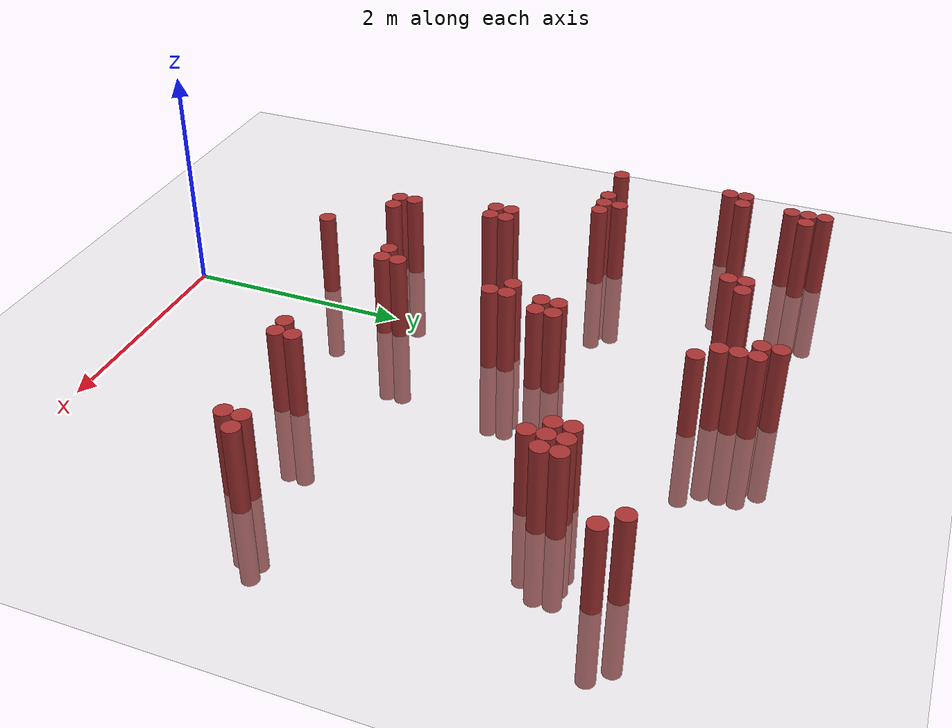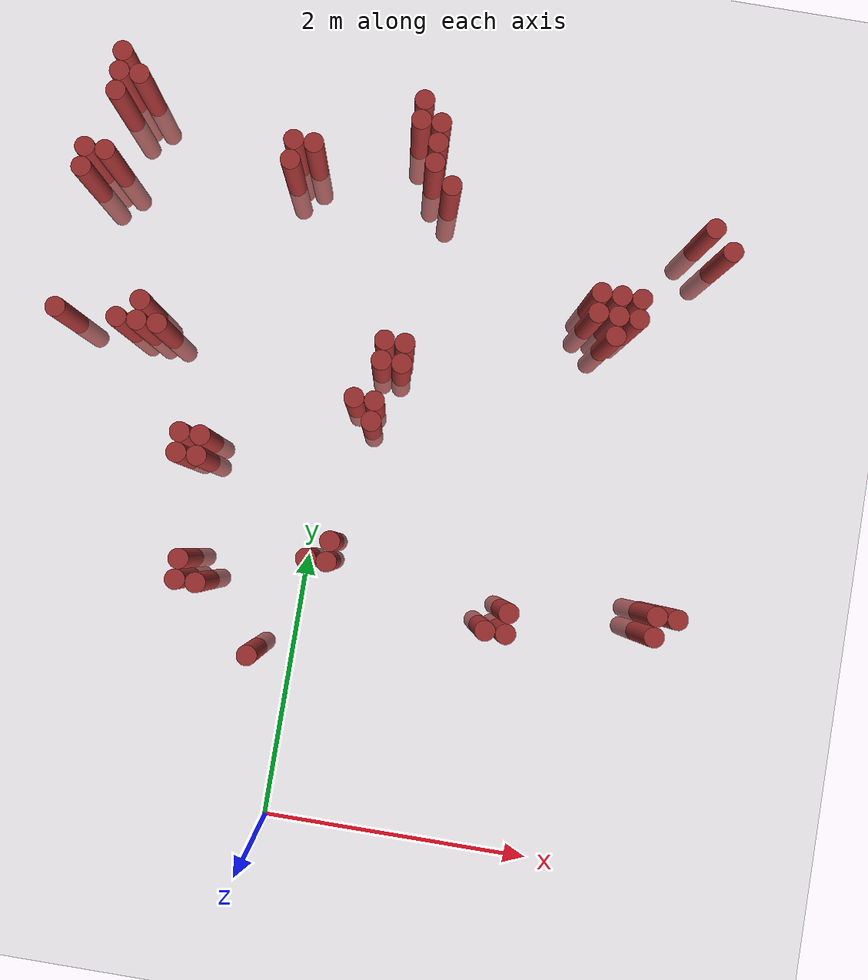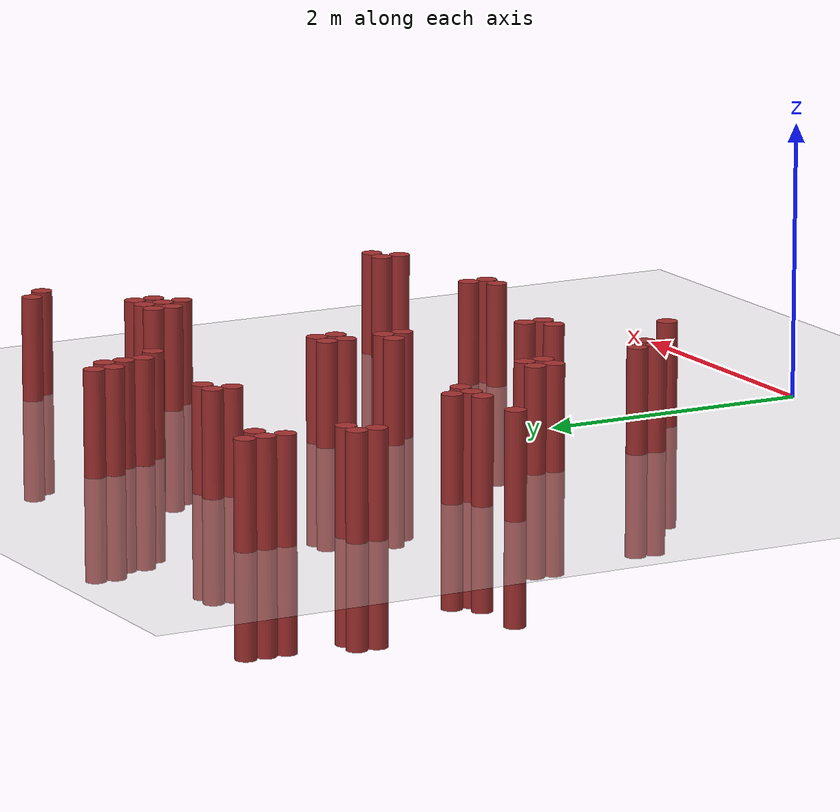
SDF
<sdf version="1.6">
 <world name="default">
  <model name="ground_plane">
   <static>1</static>
   <link name="link">
    <collision name="collision">
     <geometry><plane><normal>0 0 1</normal><size>100 100</size></plane></geometry>
     <surface><friction><ode><mu>100</mu><mu2>50</mu2></ode></friction></surface>
    </collision>
    <visual name="visual">
     <cast_shadows>0</cast_shadows>
     <geometry><plane><normal>0 0 1</normal><size>100 100</size></plane></geometry>
     <material>
      <script><uri>file://media/materials/scripts/gazebo.material</uri><name>Gazebo/Grey</name></script>
     </material>
    </visual>
   </link>
  </model>
  <model name="unit_cylinder_325">
   <static>1</static>
   <pose>-2.075000 3.475000 0.000000 0.000000 0.000000 0.000000</pose>
   <link name="link">
    <inertial>
     <mass>1</mass>
     <inertia><ixx>0.145833</ixx><ixy>0</ixy><ixz>0</ixz><iyy>0.145833</iyy><iyz>0</iyz><izz>0.125</izz></inertia>
    </inertial>
    <collision name="collision">
     <geometry><cylinder><radius>0.075000</radius><length>1.5</length></cylinder></geometry>
    </collision>
    <visual name="visual">
     <geometry><cylinder><radius>0.075000</radius><length>1.5</length></cylinder></geometry>
     <material>
      <ambient>0.648000 0.192000 0.192000 1</ambient>
      <diffuse>0.648000 0.192000 0.192000 1</diffuse>
     </material>
     <material>
      <script><name>Gazebo/Grey</name><uri>file://media/materials/scripts/gazebo.material</uri></script>
     </material>
    </visual>
   </link>
  </model>
  <model name="unit_cylinder_326">
   <static>1</static>
   <pose>-2.075000 4.525000 0.000000 0.000000 0.000000 0.000000</pose>
   <link name="link">
    <inertial>
     <mass>1</mass>
     <inertia><ixx>0.145833</ixx><ixy>0</ixy><ixz>0</ixz><iyy>0.145833</iyy><iyz>0</iyz><izz>0.125</izz></inertia>
    </inertial>
    <collision name="collision">
     <geometry><cylinder><radius>0.075000</radius><length>1.5</length></cylinder></geometry>
    </collision>
    <visual name="visual">
     <geometry><cylinder><radius>0.075000</radius><length>1.5</length></cylinder></geometry>
     <material>
      <ambient>0.648000 0.192000 0.192000 1</ambient>
      <diffuse>0.648000 0.192000 0.192000 1</diffuse>
     </material>
     <material>
      <script><name>Gazebo/Grey</name><uri>file://media/materials/scripts/gazebo.material</uri></script>
     </material>
    </visual>
   </link>
  </model>
  <model name="unit_cylinder_327">
   <static>1</static>
   <pose>-2.075000 4.675000 0.000000 0.000000 0.000000 0.000000</pose>
   <link name="link">
    <inertial>
     <mass>1</mass>
     <inertia><ixx>0.145833</ixx><ixy>0</ixy><ixz>0</ixz><iyy>0.145833</iyy><iyz>0</iyz><izz>0.125</izz></inertia>
    </inertial>
    <collision name="collision">
     <geometry><cylinder><radius>0.075000</radius><length>1.5</length></cylinder></geometry>
    </collision>
    <visual name="visual">
     <geometry><cylinder><radius>0.075000</radius><length>1.5</length></cylinder></geometry>
     <material>
      <ambient>0.648000 0.192000 0.192000 1</ambient>
      <diffuse>0.648000 0.192000 0.192000 1</diffuse>
     </material>
     <material>
      <script><name>Gazebo/Grey</name><uri>file://media/materials/scripts/gazebo.material</uri></script>
     </material>
    </visual>
   </link>
  </model>
  <model name="unit_cylinder_328">
   <static>1</static>
   <pose>-1.925000 4.675000 0.000000 0.000000 0.000000 0.000000</pose>
   <link name="link">
    <inertial>
     <mass>1</mass>
     <inertia><ixx>0.145833</ixx><ixy>0</ixy><ixz>0</ixz><iyy>0.145833</iyy><iyz>0</iyz><izz>0.125</izz></inertia>
    </inertial>
    <collision name="collision">
     <geometry><cylinder><radius>0.075000</radius><length>1.5</length></cylinder></geometry>
    </collision>
    <visual name="visual">
     <geometry><cylinder><radius>0.075000</radius><length>1.5</length></cylinder></geometry>
     <material>
      <ambient>0.648000 0.192000 0.192000 1</ambient>
      <diffuse>0.648000 0.192000 0.192000 1</diffuse>
     </material>
     <material>
      <script><name>Gazebo/Grey</name><uri>file://media/materials/scripts/gazebo.material</uri></script>
     </material>
    </visual>
   </link>
  </model>
  <model name="unit_cylinder_329">
   <static>1</static>
   <pose>-1.925000 5.125000 0.000000 0.000000 0.000000 0.000000</pose>
   <link name="link">
    <inertial>
     <mass>1</mass>
     <inertia><ixx>0.145833</ixx><ixy>0</ixy><ixz>0</ixz><iyy>0.145833</iyy><iyz>0</iyz><izz>0.125</izz></inertia>
    </inertial>
    <collision name="collision">
     <geometry><cylinder><radius>0.075000</radius><length>1.5</length></cylinder></geometry>
    </collision>
    <visual name="visual">
     <geometry><cylinder><radius>0.075000</radius><length>1.5</length></cylinder></geometry>
     <material>
      <ambient>0.648000 0.192000 0.192000 1</ambient>
      <diffuse>0.648000 0.192000 0.192000 1</diffuse>
     </material>
     <material>
      <script><name>Gazebo/Grey</name><uri>file://media/materials/scripts/gazebo.material</uri></script>
     </material>
    </visual>
   </link>
  </model>
  <model name="unit_cylinder_330">
   <static>1</static>
   <pose>-1.925000 5.275000 0.000000 0.000000 0.000000 0.000000</pose>
   <link name="link">
    <inertial>
     <mass>1</mass>
     <inertia><ixx>0.145833</ixx><ixy>0</ixy><ixz>0</ixz><iyy>0.145833</iyy><iyz>0</iyz><izz>0.125</izz></inertia>
    </inertial>
    <collision name="collision">
     <geometry><cylinder><radius>0.075000</radius><length>1.5</length></cylinder></geometry>
    </collision>
    <visual name="visual">
     <geometry><cylinder><radius>0.075000</radius><length>1.5</length></cylinder></geometry>
     <material>
      <ambient>0.648000 0.192000 0.192000 1</ambient>
      <diffuse>0.648000 0.192000 0.192000 1</diffuse>
     </material>
     <material>
      <script><name>Gazebo/Grey</name><uri>file://media/materials/scripts/gazebo.material</uri></script>
     </material>
    </visual>
   </link>
  </model>
  <model name="unit_cylinder_331">
   <static>1</static>
   <pose>-1.925000 5.425000 0.000000 0.000000 0.000000 0.000000</pose>
   <link name="link">
    <inertial>
     <mass>1</mass>
     <inertia><ixx>0.145833</ixx><ixy>0</ixy><ixz>0</ixz><iyy>0.145833</iyy><iyz>0</iyz><izz>0.125</izz></inertia>
    </inertial>
    <collision name="collision">
     <geometry><cylinder><radius>0.075000</radius><length>1.5</length></cylinder></geometry>
    </collision>
    <visual name="visual">
     <geometry><cylinder><radius>0.075000</radius><length>1.5</length></cylinder></geometry>
     <material>
      <ambient>0.648000 0.192000 0.192000 1</ambient>
      <diffuse>0.648000 0.192000 0.192000 1</diffuse>
     </material>
     <material>
      <script><name>Gazebo/Grey</name><uri>file://media/materials/scripts/gazebo.material</uri></script>
     </material>
    </visual>
   </link>
  </model>
  <model name="unit_cylinder_332">
   <static>1</static>
   <pose>-1.775000 5.275000 0.000000 0.000000 0.000000 0.000000</pose>
   <link name="link">
    <inertial>
     <mass>1</mass>
     <inertia><ixx>0.145833</ixx><ixy>0</ixy><ixz>0</ixz><iyy>0.145833</iyy><iyz>0</iyz><izz>0.125</izz></inertia>
    </inertial>
    <collision name="collision">
     <geometry><cylinder><radius>0.075000</radius><length>1.5</length></cylinder></geometry>
    </collision>
    <visual name="visual">
     <geometry><cylinder><radius>0.075000</radius><length>1.5</length></cylinder></geometry>
     <material>
      <ambient>0.648000 0.192000 0.192000 1</ambient>
      <diffuse>0.648000 0.192000 0.192000 1</diffuse>
     </material>
     <material>
      <script><name>Gazebo/Grey</name><uri>file://media/materials/scripts/gazebo.material</uri></script>
     </material>
    </visual>
   </link>
  </model>
  <model name="unit_cylinder_333">
   <static>1</static>
   <pose>-1.625000 3.475000 0.000000 0.000000 0.000000 0.000000</pose>
   <link name="link">
    <inertial>
     <mass>1</mass>
     <inertia><ixx>0.145833</ixx><ixy>0</ixy><ixz>0</ixz><iyy>0.145833</iyy><iyz>0</iyz><izz>0.125</izz></inertia>
    </inertial>
    <collision name="collision">
     <geometry><cylinder><radius>0.075000</radius><length>1.5</length></cylinder></geometry>
    </collision>
    <visual name="visual">
     <geometry><cylinder><radius>0.075000</radius><length>1.5</length></cylinder></geometry>
     <material>
      <ambient>0.648000 0.192000 0.192000 1</ambient>
      <diffuse>0.648000 0.192000 0.192000 1</diffuse>
     </material>
     <material>
      <script><name>Gazebo/Grey</name><uri>file://media/materials/scripts/gazebo.material</uri></script>
     </material>
    </visual>
   </link>
  </model>
  <model name="unit_cylinder_334">
   <static>1</static>
   <pose>-1.475000 3.475000 0.000000 0.000000 0.000000 0.000000</pose>
   <link name="link">
    <inertial>
     <mass>1</mass>
     <inertia><ixx>0.145833</ixx><ixy>0</ixy><ixz>0</ixz><iyy>0.145833</iyy><iyz>0</iyz><izz>0.125</izz></inertia>
    </inertial>
    <collision name="collision">
     <geometry><cylinder><radius>0.075000</radius><length>1.5</length></cylinder></geometry>
    </collision>
    <visual name="visual">
     <geometry><cylinder><radius>0.075000</radius><length>1.5</length></cylinder></geometry>
     <material>
      <ambient>0.648000 0.192000 0.192000 1</ambient>
      <diffuse>0.648000 0.192000 0.192000 1</diffuse>
     </material>
     <material>
      <script><name>Gazebo/Grey</name><uri>file://media/materials/scripts/gazebo.material</uri></script>
     </material>
    </visual>
   </link>
  </model>
  <model name="unit_cylinder_335">
   <static>1</static>
   <pose>-1.475000 3.625000 0.000000 0.000000 0.000000 0.000000</pose>
   <link name="link">
    <inertial>
     <mass>1</mass>
     <inertia><ixx>0.145833</ixx><ixy>0</ixy><ixz>0</ixz><iyy>0.145833</iyy><iyz>0</iyz><izz>0.125</izz></inertia>
    </inertial>
    <collision name="collision">
     <geometry><cylinder><radius>0.075000</radius><length>1.5</length></cylinder></geometry>
    </collision>
    <visual name="visual">
     <geometry><cylinder><radius>0.075000</radius><length>1.5</length></cylinder></geometry>
     <material>
      <ambient>0.648000 0.192000 0.192000 1</ambient>
      <diffuse>0.648000 0.192000 0.192000 1</diffuse>
     </material>
     <material>
      <script><name>Gazebo/Grey</name><uri>file://media/materials/scripts/gazebo.material</uri></script>
     </material>
    </visual>
   </link>
  </model>
  <model name="unit_cylinder_336">
   <static>1</static>
   <pose>-1.325000 3.475000 0.000000 0.000000 0.000000 0.000000</pose>
   <link name="link">
    <inertial>
     <mass>1</mass>
     <inertia><ixx>0.145833</ixx><ixy>0</ixy><ixz>0</ixz><iyy>0.145833</iyy><iyz>0</iyz><izz>0.125</izz></inertia>
    </inertial>
    <collision name="collision">
     <geometry><cylinder><radius>0.075000</radius><length>1.5</length></cylinder></geometry>
    </collision>
    <visual name="visual">
     <geometry><cylinder><radius>0.075000</radius><length>1.5</length></cylinder></geometry>
     <material>
      <ambient>0.648000 0.192000 0.192000 1</ambient>
      <diffuse>0.648000 0.192000 0.192000 1</diffuse>
     </material>
     <material>
      <script><name>Gazebo/Grey</name><uri>file://media/materials/scripts/gazebo.material</uri></script>
     </material>
    </visual>
   </link>
  </model>
  <model name="unit_cylinder_340">
   <static>1</static>
   <pose>-1.025000 2.575000 0.000000 0.000000 0.000000 0.000000</pose>
   <link name="link">
    <inertial>
     <mass>1</mass>
     <inertia><ixx>0.145833</ixx><ixy>0</ixy><ixz>0</ixz><iyy>0.145833</iyy><iyz>0</iyz><izz>0.125</izz></inertia>
    </inertial>
    <collision name="collision">
     <geometry><cylinder><radius>0.075000</radius><length>1.5</length></cylinder></geometry>
    </collision>
    <visual name="visual">
     <geometry><cylinder><radius>0.075000</radius><length>1.5</length></cylinder></geometry>
     <material>
      <ambient>0.648000 0.192000 0.192000 1</ambient>
      <diffuse>0.648000 0.192000 0.192000 1</diffuse>
     </material>
     <material>
      <script><name>Gazebo/Grey</name><uri>file://media/materials/scripts/gazebo.material</uri></script>
     </material>
    </visual>
   </link>
  </model>
  <model name="unit_cylinder_341">
   <static>1</static>
   <pose>-1.025000 2.725000 0.000000 0.000000 0.000000 0.000000</pose>
   <link name="link">
    <inertial>
     <mass>1</mass>
     <inertia><ixx>0.145833</ixx><ixy>0</ixy><ixz>0</ixz><iyy>0.145833</iyy><iyz>0</iyz><izz>0.125</izz></inertia>
    </inertial>
    <collision name="collision">
     <geometry><cylinder><radius>0.075000</radius><length>1.5</length></cylinder></geometry>
    </collision>
    <visual name="visual">
     <geometry><cylinder><radius>0.075000</radius><length>1.5</length></cylinder></geometry>
     <material>
      <ambient>0.648000 0.192000 0.192000 1</ambient>
      <diffuse>0.648000 0.192000 0.192000 1</diffuse>
     </material>
     <material>
      <script><name>Gazebo/Grey</name><uri>file://media/materials/scripts/gazebo.material</uri></script>
     </material>
    </visual>
   </link>
  </model>
  <model name="unit_cylinder_342">
   <static>1</static>
   <pose>-0.875000 1.675000 0.000000 0.000000 0.000000 0.000000</pose>
   <link name="link">
    <inertial>
     <mass>1</mass>
     <inertia><ixx>0.145833</ixx><ixy>0</ixy><ixz>0</ixz><iyy>0.145833</iyy><iyz>0</iyz><izz>0.125</izz></inertia>
    </inertial>
    <collision name="collision">
     <geometry><cylinder><radius>0.075000</radius><length>1.5</length></cylinder></geometry>
    </collision>
    <visual name="visual">
     <geometry><cylinder><radius>0.075000</radius><length>1.5</length></cylinder></geometry>
     <material>
      <ambient>0.648000 0.192000 0.192000 1</ambient>
      <diffuse>0.648000 0.192000 0.192000 1</diffuse>
     </material>
     <material>
      <script><name>Gazebo/Grey</name><uri>file://media/materials/scripts/gazebo.material</uri></script>
     </material>
    </visual>
   </link>
  </model>
  <model name="unit_cylinder_343">
   <static>1</static>
   <pose>-0.875000 1.825000 0.000000 0.000000 0.000000 0.000000</pose>
   <link name="link">
    <inertial>
     <mass>1</mass>
     <inertia><ixx>0.145833</ixx><ixy>0</ixy><ixz>0</ixz><iyy>0.145833</iyy><iyz>0</iyz><izz>0.125</izz></inertia>
    </inertial>
    <collision name="collision">
     <geometry><cylinder><radius>0.075000</radius><length>1.5</length></cylinder></geometry>
    </collision>
    <visual name="visual">
     <geometry><cylinder><radius>0.075000</radius><length>1.5</length></cylinder></geometry>
     <material>
      <ambient>0.648000 0.192000 0.192000 1</ambient>
      <diffuse>0.648000 0.192000 0.192000 1</diffuse>
     </material>
     <material>
      <script><name>Gazebo/Grey</name><uri>file://media/materials/scripts/gazebo.material</uri></script>
     </material>
    </visual>
   </link>
  </model>
  <model name="unit_cylinder_344">
   <static>1</static>
   <pose>-0.875000 2.575000 0.000000 0.000000 0.000000 0.000000</pose>
   <link name="link">
    <inertial>
     <mass>1</mass>
     <inertia><ixx>0.145833</ixx><ixy>0</ixy><ixz>0</ixz><iyy>0.145833</iyy><iyz>0</iyz><izz>0.125</izz></inertia>
    </inertial>
    <collision name="collision">
     <geometry><cylinder><radius>0.075000</radius><length>1.5</length></cylinder></geometry>
    </collision>
    <visual name="visual">
     <geometry><cylinder><radius>0.075000</radius><length>1.5</length></cylinder></geometry>
     <material>
      <ambient>0.648000 0.192000 0.192000 1</ambient>
      <diffuse>0.648000 0.192000 0.192000 1</diffuse>
     </material>
     <material>
      <script><name>Gazebo/Grey</name><uri>file://media/materials/scripts/gazebo.material</uri></script>
     </material>
    </visual>
   </link>
  </model>
  <model name="unit_cylinder_345">
   <static>1</static>
   <pose>-0.875000 2.725000 0.000000 0.000000 0.000000 0.000000</pose>
   <link name="link">
    <inertial>
     <mass>1</mass>
     <inertia><ixx>0.145833</ixx><ixy>0</ixy><ixz>0</ixz><iyy>0.145833</iyy><iyz>0</iyz><izz>0.125</izz></inertia>
    </inertial>
    <collision name="collision">
     <geometry><cylinder><radius>0.075000</radius><length>1.5</length></cylinder></geometry>
    </collision>
    <visual name="visual">
     <geometry><cylinder><radius>0.075000</radius><length>1.5</length></cylinder></geometry>
     <material>
      <ambient>0.648000 0.192000 0.192000 1</ambient>
      <diffuse>0.648000 0.192000 0.192000 1</diffuse>
     </material>
     <material>
      <script><name>Gazebo/Grey</name><uri>file://media/materials/scripts/gazebo.material</uri></script>
     </material>
    </visual>
   </link>
  </model>
  <model name="unit_cylinder_346">
   <static>1</static>
   <pose>-0.725000 1.675000 0.000000 0.000000 0.000000 0.000000</pose>
   <link name="link">
    <inertial>
     <mass>1</mass>
     <inertia><ixx>0.145833</ixx><ixy>0</ixy><ixz>0</ixz><iyy>0.145833</iyy><iyz>0</iyz><izz>0.125</izz></inertia>
    </inertial>
    <collision name="collision">
     <geometry><cylinder><radius>0.075000</radius><length>1.5</length></cylinder></geometry>
    </collision>
    <visual name="visual">
     <geometry><cylinder><radius>0.075000</radius><length>1.5</length></cylinder></geometry>
     <material>
      <ambient>0.648000 0.192000 0.192000 1</ambient>
      <diffuse>0.648000 0.192000 0.192000 1</diffuse>
     </material>
     <material>
      <script><name>Gazebo/Grey</name><uri>file://media/materials/scripts/gazebo.material</uri></script>
     </material>
    </visual>
   </link>
  </model>
  <model name="unit_cylinder_347">
   <static>1</static>
   <pose>-0.575000 4.825000 0.000000 0.000000 0.000000 0.000000</pose>
   <link name="link">
    <inertial>
     <mass>1</mass>
     <inertia><ixx>0.145833</ixx><ixy>0</ixy><ixz>0</ixz><iyy>0.145833</iyy><iyz>0</iyz><izz>0.125</izz></inertia>
    </inertial>
    <collision name="collision">
     <geometry><cylinder><radius>0.075000</radius><length>1.5</length></cylinder></geometry>
    </collision>
    <visual name="visual">
     <geometry><cylinder><radius>0.075000</radius><length>1.5</length></cylinder></geometry>
     <material>
      <ambient>0.648000 0.192000 0.192000 1</ambient>
      <diffuse>0.648000 0.192000 0.192000 1</diffuse>
     </material>
     <material>
      <script><name>Gazebo/Grey</name><uri>file://media/materials/scripts/gazebo.material</uri></script>
     </material>
    </visual>
   </link>
  </model>
  <model name="unit_cylinder_348">
   <static>1</static>
   <pose>-0.575000 4.975000 0.000000 0.000000 0.000000 0.000000</pose>
   <link name="link">
    <inertial>
     <mass>1</mass>
     <inertia><ixx>0.145833</ixx><ixy>0</ixy><ixz>0</ixz><iyy>0.145833</iyy><iyz>0</iyz><izz>0.125</izz></inertia>
    </inertial>
    <collision name="collision">
     <geometry><cylinder><radius>0.075000</radius><length>1.5</length></cylinder></geometry>
    </collision>
    <visual name="visual">
     <geometry><cylinder><radius>0.075000</radius><length>1.5</length></cylinder></geometry>
     <material>
      <ambient>0.648000 0.192000 0.192000 1</ambient>
      <diffuse>0.648000 0.192000 0.192000 1</diffuse>
     </material>
     <material>
      <script><name>Gazebo/Grey</name><uri>file://media/materials/scripts/gazebo.material</uri></script>
     </material>
    </visual>
   </link>
  </model>
  <model name="unit_cylinder_350">
   <static>1</static>
   <pose>-0.425000 4.975000 0.000000 0.000000 0.000000 0.000000</pose>
   <link name="link">
    <inertial>
     <mass>1</mass>
     <inertia><ixx>0.145833</ixx><ixy>0</ixy><ixz>0</ixz><iyy>0.145833</iyy><iyz>0</iyz><izz>0.125</izz></inertia>
    </inertial>
    <collision name="collision">
     <geometry><cylinder><radius>0.075000</radius><length>1.5</length></cylinder></geometry>
    </collision>
    <visual name="visual">
     <geometry><cylinder><radius>0.075000</radius><length>1.5</length></cylinder></geometry>
     <material>
      <ambient>0.648000 0.192000 0.192000 1</ambient>
      <diffuse>0.648000 0.192000 0.192000 1</diffuse>
     </material>
     <material>
      <script><name>Gazebo/Grey</name><uri>file://media/materials/scripts/gazebo.material</uri></script>
     </material>
    </visual>
   </link>
  </model>
  <model name="unit_cylinder_354">
   <static>1</static>
   <pose>-0.275000 1.225000 0.000000 0.000000 0.000000 0.000000</pose>
   <link name="link">
    <inertial>
     <mass>1</mass>
     <inertia><ixx>0.145833</ixx><ixy>0</ixy><ixz>0</ixz><iyy>0.145833</iyy><iyz>0</iyz><izz>0.125</izz></inertia>
    </inertial>
    <collision name="collision">
     <geometry><cylinder><radius>0.075000</radius><length>1.5</length></cylinder></geometry>
    </collision>
    <visual name="visual">
     <geometry><cylinder><radius>0.075000</radius><length>1.5</length></cylinder></geometry>
     <material>
      <ambient>0.648000 0.192000 0.192000 1</ambient>
      <diffuse>0.648000 0.192000 0.192000 1</diffuse>
     </material>
     <material>
      <script><name>Gazebo/Grey</name><uri>file://media/materials/scripts/gazebo.material</uri></script>
     </material>
    </visual>
   </link>
  </model>
  <model name="unit_cylinder_356">
   <static>1</static>
   <pose>0.025000 1.975000 0.000000 0.000000 0.000000 0.000000</pose>
   <link name="link">
    <inertial>
     <mass>1</mass>
     <inertia><ixx>0.145833</ixx><ixy>0</ixy><ixz>0</ixz><iyy>0.145833</iyy><iyz>0</iyz><izz>0.125</izz></inertia>
    </inertial>
    <collision name="collision">
     <geometry><cylinder><radius>0.075000</radius><length>1.5</length></cylinder></geometry>
    </collision>
    <visual name="visual">
     <geometry><cylinder><radius>0.075000</radius><length>1.5</length></cylinder></geometry>
     <material>
      <ambient>0.648000 0.192000 0.192000 1</ambient>
      <diffuse>0.648000 0.192000 0.192000 1</diffuse>
     </material>
     <material>
      <script><name>Gazebo/Grey</name><uri>file://media/materials/scripts/gazebo.material</uri></script>
     </material>
    </visual>
   </link>
  </model>
  <model name="unit_cylinder_357">
   <static>1</static>
   <pose>0.175000 1.975000 0.000000 0.000000 0.000000 0.000000</pose>
   <link name="link">
    <inertial>
     <mass>1</mass>
     <inertia><ixx>0.145833</ixx><ixy>0</ixy><ixz>0</ixz><iyy>0.145833</iyy><iyz>0</iyz><izz>0.125</izz></inertia>
    </inertial>
    <collision name="collision">
     <geometry><cylinder><radius>0.075000</radius><length>1.5</length></cylinder></geometry>
    </collision>
    <visual name="visual">
     <geometry><cylinder><radius>0.075000</radius><length>1.5</length></cylinder></geometry>
     <material>
      <ambient>0.648000 0.192000 0.192000 1</ambient>
      <diffuse>0.648000 0.192000 0.192000 1</diffuse>
     </material>
     <material>
      <script><name>Gazebo/Grey</name><uri>file://media/materials/scripts/gazebo.material</uri></script>
     </material>
    </visual>
   </link>
  </model>
  <model name="unit_cylinder_358">
   <static>1</static>
   <pose>0.175000 2.125000 0.000000 0.000000 0.000000 0.000000</pose>
   <link name="link">
    <inertial>
     <mass>1</mass>
     <inertia><ixx>0.145833</ixx><ixy>0</ixy><ixz>0</ixz><iyy>0.145833</iyy><iyz>0</iyz><izz>0.125</izz></inertia>
    </inertial>
    <collision name="collision">
     <geometry><cylinder><radius>0.075000</radius><length>1.5</length></cylinder></geometry>
    </collision>
    <visual name="visual">
     <geometry><cylinder><radius>0.075000</radius><length>1.5</length></cylinder></geometry>
     <material>
      <ambient>0.648000 0.192000 0.192000 1</ambient>
      <diffuse>0.648000 0.192000 0.192000 1</diffuse>
     </material>
     <material>
      <script><name>Gazebo/Grey</name><uri>file://media/materials/scripts/gazebo.material</uri></script>
     </material>
    </visual>
   </link>
  </model>
  <model name="unit_cylinder_359">
   <static>1</static>
   <pose>0.175000 3.175000 0.000000 0.000000 0.000000 0.000000</pose>
   <link name="link">
    <inertial>
     <mass>1</mass>
     <inertia><ixx>0.145833</ixx><ixy>0</ixy><ixz>0</ixz><iyy>0.145833</iyy><iyz>0</iyz><izz>0.125</izz></inertia>
    </inertial>
    <collision name="collision">
     <geometry><cylinder><radius>0.075000</radius><length>1.5</length></cylinder></geometry>
    </collision>
    <visual name="visual">
     <geometry><cylinder><radius>0.075000</radius><length>1.5</length></cylinder></geometry>
     <material>
      <ambient>0.648000 0.192000 0.192000 1</ambient>
      <diffuse>0.648000 0.192000 0.192000 1</diffuse>
     </material>
     <material>
      <script><name>Gazebo/Grey</name><uri>file://media/materials/scripts/gazebo.material</uri></script>
     </material>
    </visual>
   </link>
  </model>
  <model name="unit_cylinder_363">
   <static>1</static>
   <pose>0.325000 3.025000 0.000000 0.000000 0.000000 0.000000</pose>
   <link name="link">
    <inertial>
     <mass>1</mass>
     <inertia><ixx>0.145833</ixx><ixy>0</ixy><ixz>0</ixz><iyy>0.145833</iyy><iyz>0</iyz><izz>0.125</izz></inertia>
    </inertial>
    <collision name="collision">
     <geometry><cylinder><radius>0.075000</radius><length>1.5</length></cylinder></geometry>
    </collision>
    <visual name="visual">
     <geometry><cylinder><radius>0.075000</radius><length>1.5</length></cylinder></geometry>
     <material>
      <ambient>0.648000 0.192000 0.192000 1</ambient>
      <diffuse>0.648000 0.192000 0.192000 1</diffuse>
     </material>
     <material>
      <script><name>Gazebo/Grey</name><uri>file://media/materials/scripts/gazebo.material</uri></script>
     </material>
    </visual>
   </link>
  </model>
  <model name="unit_cylinder_364">
   <static>1</static>
   <pose>0.325000 3.175000 0.000000 0.000000 0.000000 0.000000</pose>
   <link name="link">
    <inertial>
     <mass>1</mass>
     <inertia><ixx>0.145833</ixx><ixy>0</ixy><ixz>0</ixz><iyy>0.145833</iyy><iyz>0</iyz><izz>0.125</izz></inertia>
    </inertial>
    <collision name="collision">
     <geometry><cylinder><radius>0.075000</radius><length>1.5</length></cylinder></geometry>
    </collision>
    <visual name="visual">
     <geometry><cylinder><radius>0.075000</radius><length>1.5</length></cylinder></geometry>
     <material>
      <ambient>0.648000 0.192000 0.192000 1</ambient>
      <diffuse>0.648000 0.192000 0.192000 1</diffuse>
     </material>
     <material>
      <script><name>Gazebo/Grey</name><uri>file://media/materials/scripts/gazebo.material</uri></script>
     </material>
    </visual>
   </link>
  </model>
  <model name="unit_cylinder_365">
   <static>1</static>
   <pose>0.325000 3.475000 0.000000 0.000000 0.000000 0.000000</pose>
   <link name="link">
    <inertial>
     <mass>1</mass>
     <inertia><ixx>0.145833</ixx><ixy>0</ixy><ixz>0</ixz><iyy>0.145833</iyy><iyz>0</iyz><izz>0.125</izz></inertia>
    </inertial>
    <collision name="collision">
     <geometry><cylinder><radius>0.075000</radius><length>1.5</length></cylinder></geometry>
    </collision>
    <visual name="visual">
     <geometry><cylinder><radius>0.075000</radius><length>1.5</length></cylinder></geometry>
     <material>
      <ambient>0.648000 0.192000 0.192000 1</ambient>
      <diffuse>0.648000 0.192000 0.192000 1</diffuse>
     </material>
     <material>
      <script><name>Gazebo/Grey</name><uri>file://media/materials/scripts/gazebo.material</uri></script>
     </material>
    </visual>
   </link>
  </model>
  <model name="unit_cylinder_366">
   <static>1</static>
   <pose>0.325000 3.625000 0.000000 0.000000 0.000000 0.000000</pose>
   <link name="link">
    <inertial>
     <mass>1</mass>
     <inertia><ixx>0.145833</ixx><ixy>0</ixy><ixz>0</ixz><iyy>0.145833</iyy><iyz>0</iyz><izz>0.125</izz></inertia>
    </inertial>
    <collision name="collision">
     <geometry><cylinder><radius>0.075000</radius><length>1.5</length></cylinder></geometry>
    </collision>
    <visual name="visual">
     <geometry><cylinder><radius>0.075000</radius><length>1.5</length></cylinder></geometry>
     <material>
      <ambient>0.648000 0.192000 0.192000 1</ambient>
      <diffuse>0.648000 0.192000 0.192000 1</diffuse>
     </material>
     <material>
      <script><name>Gazebo/Grey</name><uri>file://media/materials/scripts/gazebo.material</uri></script>
     </material>
    </visual>
   </link>
  </model>
  <model name="unit_cylinder_367">
   <static>1</static>
   <pose>0.325000 5.275000 0.000000 0.000000 0.000000 0.000000</pose>
   <link name="link">
    <inertial>
     <mass>1</mass>
     <inertia><ixx>0.145833</ixx><ixy>0</ixy><ixz>0</ixz><iyy>0.145833</iyy><iyz>0</iyz><izz>0.125</izz></inertia>
    </inertial>
    <collision name="collision">
     <geometry><cylinder><radius>0.075000</radius><length>1.5</length></cylinder></geometry>
    </collision>
    <visual name="visual">
     <geometry><cylinder><radius>0.075000</radius><length>1.5</length></cylinder></geometry>
     <material>
      <ambient>0.648000 0.192000 0.192000 1</ambient>
      <diffuse>0.648000 0.192000 0.192000 1</diffuse>
     </material>
     <material>
      <script><name>Gazebo/Grey</name><uri>file://media/materials/scripts/gazebo.material</uri></script>
     </material>
    </visual>
   </link>
  </model>
  <model name="unit_cylinder_368">
   <static>1</static>
   <pose>0.325000 5.425000 0.000000 0.000000 0.000000 0.000000</pose>
   <link name="link">
    <inertial>
     <mass>1</mass>
     <inertia><ixx>0.145833</ixx><ixy>0</ixy><ixz>0</ixz><iyy>0.145833</iyy><iyz>0</iyz><izz>0.125</izz></inertia>
    </inertial>
    <collision name="collision">
     <geometry><cylinder><radius>0.075000</radius><length>1.5</length></cylinder></geometry>
    </collision>
    <visual name="visual">
     <geometry><cylinder><radius>0.075000</radius><length>1.5</length></cylinder></geometry>
     <material>
      <ambient>0.648000 0.192000 0.192000 1</ambient>
      <diffuse>0.648000 0.192000 0.192000 1</diffuse>
     </material>
     <material>
      <script><name>Gazebo/Grey</name><uri>file://media/materials/scripts/gazebo.material</uri></script>
     </material>
    </visual>
   </link>
  </model>
  <model name="unit_cylinder_372">
   <static>1</static>
   <pose>0.475000 3.475000 0.000000 0.000000 0.000000 0.000000</pose>
   <link name="link">
    <inertial>
     <mass>1</mass>
     <inertia><ixx>0.145833</ixx><ixy>0</ixy><ixz>0</ixz><iyy>0.145833</iyy><iyz>0</iyz><izz>0.125</izz></inertia>
    </inertial>
    <collision name="collision">
     <geometry><cylinder><radius>0.075000</radius><length>1.5</length></cylinder></geometry>
    </collision>
    <visual name="visual">
     <geometry><cylinder><radius>0.075000</radius><length>1.5</length></cylinder></geometry>
     <material>
      <ambient>0.648000 0.192000 0.192000 1</ambient>
      <diffuse>0.648000 0.192000 0.192000 1</diffuse>
     </material>
     <material>
      <script><name>Gazebo/Grey</name><uri>file://media/materials/scripts/gazebo.material</uri></script>
     </material>
    </visual>
   </link>
  </model>
  <model name="unit_cylinder_373">
   <static>1</static>
   <pose>0.475000 3.625000 0.000000 0.000000 0.000000 0.000000</pose>
   <link name="link">
    <inertial>
     <mass>1</mass>
     <inertia><ixx>0.145833</ixx><ixy>0</ixy><ixz>0</ixz><iyy>0.145833</iyy><iyz>0</iyz><izz>0.125</izz></inertia>
    </inertial>
    <collision name="collision">
     <geometry><cylinder><radius>0.075000</radius><length>1.5</length></cylinder></geometry>
    </collision>
    <visual name="visual">
     <geometry><cylinder><radius>0.075000</radius><length>1.5</length></cylinder></geometry>
     <material>
      <ambient>0.648000 0.192000 0.192000 1</ambient>
      <diffuse>0.648000 0.192000 0.192000 1</diffuse>
     </material>
     <material>
      <script><name>Gazebo/Grey</name><uri>file://media/materials/scripts/gazebo.material</uri></script>
     </material>
    </visual>
   </link>
  </model>
  <model name="unit_cylinder_374">
   <static>1</static>
   <pose>0.475000 4.975000 0.000000 0.000000 0.000000 0.000000</pose>
   <link name="link">
    <inertial>
     <mass>1</mass>
     <inertia><ixx>0.145833</ixx><ixy>0</ixy><ixz>0</ixz><iyy>0.145833</iyy><iyz>0</iyz><izz>0.125</izz></inertia>
    </inertial>
    <collision name="collision">
     <geometry><cylinder><radius>0.075000</radius><length>1.5</length></cylinder></geometry>
    </collision>
    <visual name="visual">
     <geometry><cylinder><radius>0.075000</radius><length>1.5</length></cylinder></geometry>
     <material>
      <ambient>0.648000 0.192000 0.192000 1</ambient>
      <diffuse>0.648000 0.192000 0.192000 1</diffuse>
     </material>
     <material>
      <script><name>Gazebo/Grey</name><uri>file://media/materials/scripts/gazebo.material</uri></script>
     </material>
    </visual>
   </link>
  </model>
  <model name="unit_cylinder_375">
   <static>1</static>
   <pose>0.475000 5.125000 0.000000 0.000000 0.000000 0.000000</pose>
   <link name="link">
    <inertial>
     <mass>1</mass>
     <inertia><ixx>0.145833</ixx><ixy>0</ixy><ixz>0</ixz><iyy>0.145833</iyy><iyz>0</iyz><izz>0.125</izz></inertia>
    </inertial>
    <collision name="collision">
     <geometry><cylinder><radius>0.075000</radius><length>1.5</length></cylinder></geometry>
    </collision>
    <visual name="visual">
     <geometry><cylinder><radius>0.075000</radius><length>1.5</length></cylinder></geometry>
     <material>
      <ambient>0.648000 0.192000 0.192000 1</ambient>
      <diffuse>0.648000 0.192000 0.192000 1</diffuse>
     </material>
     <material>
      <script><name>Gazebo/Grey</name><uri>file://media/materials/scripts/gazebo.material</uri></script>
     </material>
    </visual>
   </link>
  </model>
  <model name="unit_cylinder_376">
   <static>1</static>
   <pose>0.475000 5.275000 0.000000 0.000000 0.000000 0.000000</pose>
   <link name="link">
    <inertial>
     <mass>1</mass>
     <inertia><ixx>0.145833</ixx><ixy>0</ixy><ixz>0</ixz><iyy>0.145833</iyy><iyz>0</iyz><izz>0.125</izz></inertia>
    </inertial>
    <collision name="collision">
     <geometry><cylinder><radius>0.075000</radius><length>1.5</length></cylinder></geometry>
    </collision>
    <visual name="visual">
     <geometry><cylinder><radius>0.075000</radius><length>1.5</length></cylinder></geometry>
     <material>
      <ambient>0.648000 0.192000 0.192000 1</ambient>
      <diffuse>0.648000 0.192000 0.192000 1</diffuse>
     </material>
     <material>
      <script><name>Gazebo/Grey</name><uri>file://media/materials/scripts/gazebo.material</uri></script>
     </material>
    </visual>
   </link>
  </model>
  <model name="unit_cylinder_380">
   <static>1</static>
   <pose>0.625000 4.825000 0.000000 0.000000 0.000000 0.000000</pose>
   <link name="link">
    <inertial>
     <mass>1</mass>
     <inertia><ixx>0.145833</ixx><ixy>0</ixy><ixz>0</ixz><iyy>0.145833</iyy><iyz>0</iyz><izz>0.125</izz></inertia>
    </inertial>
    <collision name="collision">
     <geometry><cylinder><radius>0.075000</radius><length>1.5</length></cylinder></geometry>
    </collision>
    <visual name="visual">
     <geometry><cylinder><radius>0.075000</radius><length>1.5</length></cylinder></geometry>
     <material>
      <ambient>0.648000 0.192000 0.192000 1</ambient>
      <diffuse>0.648000 0.192000 0.192000 1</diffuse>
     </material>
     <material>
      <script><name>Gazebo/Grey</name><uri>file://media/materials/scripts/gazebo.material</uri></script>
     </material>
    </visual>
   </link>
  </model>
  <model name="unit_cylinder_391">
   <static>1</static>
   <pose>1.375000 1.675000 0.000000 0.000000 0.000000 0.000000</pose>
   <link name="link">
    <inertial>
     <mass>1</mass>
     <inertia><ixx>0.145833</ixx><ixy>0</ixy><ixz>0</ixz><iyy>0.145833</iyy><iyz>0</iyz><izz>0.125</izz></inertia>
    </inertial>
    <collision name="collision">
     <geometry><cylinder><radius>0.075000</radius><length>1.5</length></cylinder></geometry>
    </collision>
    <visual name="visual">
     <geometry><cylinder><radius>0.075000</radius><length>1.5</length></cylinder></geometry>
     <material>
      <ambient>0.648000 0.192000 0.192000 1</ambient>
      <diffuse>0.648000 0.192000 0.192000 1</diffuse>
     </material>
     <material>
      <script><name>Gazebo/Grey</name><uri>file://media/materials/scripts/gazebo.material</uri></script>
     </material>
    </visual>
   </link>
  </model>
  <model name="unit_cylinder_395">
   <static>1</static>
   <pose>1.525000 1.675000 0.000000 0.000000 0.000000 0.000000</pose>
   <link name="link">
    <inertial>
     <mass>1</mass>
     <inertia><ixx>0.145833</ixx><ixy>0</ixy><ixz>0</ixz><iyy>0.145833</iyy><iyz>0</iyz><izz>0.125</izz></inertia>
    </inertial>
    <collision name="collision">
     <geometry><cylinder><radius>0.075000</radius><length>1.5</length></cylinder></geometry>
    </collision>
    <visual name="visual">
     <geometry><cylinder><radius>0.075000</radius><length>1.5</length></cylinder></geometry>
     <material>
      <ambient>0.648000 0.192000 0.192000 1</ambient>
      <diffuse>0.648000 0.192000 0.192000 1</diffuse>
     </material>
     <material>
      <script><name>Gazebo/Grey</name><uri>file://media/materials/scripts/gazebo.material</uri></script>
     </material>
    </visual>
   </link>
  </model>
  <model name="unit_cylinder_396">
   <static>1</static>
   <pose>1.525000 1.825000 0.000000 0.000000 0.000000 0.000000</pose>
   <link name="link">
    <inertial>
     <mass>1</mass>
     <inertia><ixx>0.145833</ixx><ixy>0</ixy><ixz>0</ixz><iyy>0.145833</iyy><iyz>0</iyz><izz>0.125</izz></inertia>
    </inertial>
    <collision name="collision">
     <geometry><cylinder><radius>0.075000</radius><length>1.5</length></cylinder></geometry>
    </collision>
    <visual name="visual">
     <geometry><cylinder><radius>0.075000</radius><length>1.5</length></cylinder></geometry>
     <material>
      <ambient>0.648000 0.192000 0.192000 1</ambient>
      <diffuse>0.648000 0.192000 0.192000 1</diffuse>
     </material>
     <material>
      <script><name>Gazebo/Grey</name><uri>file://media/materials/scripts/gazebo.material</uri></script>
     </material>
    </visual>
   </link>
  </model>
  <model name="unit_cylinder_404">
   <static>1</static>
   <pose>1.825000 4.075000 0.000000 0.000000 0.000000 0.000000</pose>
   <link name="link">
    <inertial>
     <mass>1</mass>
     <inertia><ixx>0.145833</ixx><ixy>0</ixy><ixz>0</ixz><iyy>0.145833</iyy><iyz>0</iyz><izz>0.125</izz></inertia>
    </inertial>
    <collision name="collision">
     <geometry><cylinder><radius>0.075000</radius><length>1.5</length></cylinder></geometry>
    </collision>
    <visual name="visual">
     <geometry><cylinder><radius>0.075000</radius><length>1.5</length></cylinder></geometry>
     <material>
      <ambient>0.648000 0.192000 0.192000 1</ambient>
      <diffuse>0.648000 0.192000 0.192000 1</diffuse>
     </material>
     <material>
      <script><name>Gazebo/Grey</name><uri>file://media/materials/scripts/gazebo.material</uri></script>
     </material>
    </visual>
   </link>
  </model>
  <model name="unit_cylinder_405">
   <static>1</static>
   <pose>1.825000 4.225000 0.000000 0.000000 0.000000 0.000000</pose>
   <link name="link">
    <inertial>
     <mass>1</mass>
     <inertia><ixx>0.145833</ixx><ixy>0</ixy><ixz>0</ixz><iyy>0.145833</iyy><iyz>0</iyz><izz>0.125</izz></inertia>
    </inertial>
    <collision name="collision">
     <geometry><cylinder><radius>0.075000</radius><length>1.5</length></cylinder></geometry>
    </collision>
    <visual name="visual">
     <geometry><cylinder><radius>0.075000</radius><length>1.5</length></cylinder></geometry>
     <material>
      <ambient>0.648000 0.192000 0.192000 1</ambient>
      <diffuse>0.648000 0.192000 0.192000 1</diffuse>
     </material>
     <material>
      <script><name>Gazebo/Grey</name><uri>file://media/materials/scripts/gazebo.material</uri></script>
     </material>
    </visual>
   </link>
  </model>
  <model name="unit_cylinder_409">
   <static>1</static>
   <pose>1.975000 3.925000 0.000000 0.000000 0.000000 0.000000</pose>
   <link name="link">
    <inertial>
     <mass>1</mass>
     <inertia><ixx>0.145833</ixx><ixy>0</ixy><ixz>0</ixz><iyy>0.145833</iyy><iyz>0</iyz><izz>0.125</izz></inertia>
    </inertial>
    <collision name="collision">
     <geometry><cylinder><radius>0.075000</radius><length>1.5</length></cylinder></geometry>
    </collision>
    <visual name="visual">
     <geometry><cylinder><radius>0.075000</radius><length>1.5</length></cylinder></geometry>
     <material>
      <ambient>0.648000 0.192000 0.192000 1</ambient>
      <diffuse>0.648000 0.192000 0.192000 1</diffuse>
     </material>
     <material>
      <script><name>Gazebo/Grey</name><uri>file://media/materials/scripts/gazebo.material</uri></script>
     </material>
    </visual>
   </link>
  </model>
  <model name="unit_cylinder_410">
   <static>1</static>
   <pose>1.975000 4.075000 0.000000 0.000000 0.000000 0.000000</pose>
   <link name="link">
    <inertial>
     <mass>1</mass>
     <inertia><ixx>0.145833</ixx><ixy>0</ixy><ixz>0</ixz><iyy>0.145833</iyy><iyz>0</iyz><izz>0.125</izz></inertia>
    </inertial>
    <collision name="collision">
     <geometry><cylinder><radius>0.075000</radius><length>1.5</length></cylinder></geometry>
    </collision>
    <visual name="visual">
     <geometry><cylinder><radius>0.075000</radius><length>1.5</length></cylinder></geometry>
     <material>
      <ambient>0.648000 0.192000 0.192000 1</ambient>
      <diffuse>0.648000 0.192000 0.192000 1</diffuse>
     </material>
     <material>
      <script><name>Gazebo/Grey</name><uri>file://media/materials/scripts/gazebo.material</uri></script>
     </material>
    </visual>
   </link>
  </model>
  <model name="unit_cylinder_411">
   <static>1</static>
   <pose>1.975000 4.225000 0.000000 0.000000 0.000000 0.000000</pose>
   <link name="link">
    <inertial>
     <mass>1</mass>
     <inertia><ixx>0.145833</ixx><ixy>0</ixy><ixz>0</ixz><iyy>0.145833</iyy><iyz>0</iyz><izz>0.125</izz></inertia>
    </inertial>
    <collision name="collision">
     <geometry><cylinder><radius>0.075000</radius><length>1.5</length></cylinder></geometry>
    </collision>
    <visual name="visual">
     <geometry><cylinder><radius>0.075000</radius><length>1.5</length></cylinder></geometry>
     <material>
      <ambient>0.648000 0.192000 0.192000 1</ambient>
      <diffuse>0.648000 0.192000 0.192000 1</diffuse>
     </material>
     <material>
      <script><name>Gazebo/Grey</name><uri>file://media/materials/scripts/gazebo.material</uri></script>
     </material>
    </visual>
   </link>
  </model>
  <model name="unit_cylinder_416">
   <static>1</static>
   <pose>2.125000 4.075000 0.000000 0.000000 0.000000 0.000000</pose>
   <link name="link">
    <inertial>
     <mass>1</mass>
     <inertia><ixx>0.145833</ixx><ixy>0</ixy><ixz>0</ixz><iyy>0.145833</iyy><iyz>0</iyz><izz>0.125</izz></inertia>
    </inertial>
    <collision name="collision">
     <geometry><cylinder><radius>0.075000</radius><length>1.5</length></cylinder></geometry>
    </collision>
    <visual name="visual">
     <geometry><cylinder><radius>0.075000</radius><length>1.5</length></cylinder></geometry>
     <material>
      <ambient>0.648000 0.192000 0.192000 1</ambient>
      <diffuse>0.648000 0.192000 0.192000 1</diffuse>
     </material>
     <material>
      <script><name>Gazebo/Grey</name><uri>file://media/materials/scripts/gazebo.material</uri></script>
     </material>
    </visual>
   </link>
  </model>
  <model name="unit_cylinder_417">
   <static>1</static>
   <pose>2.125000 4.225000 0.000000 0.000000 0.000000 0.000000</pose>
   <link name="link">
    <inertial>
     <mass>1</mass>
     <inertia><ixx>0.145833</ixx><ixy>0</ixy><ixz>0</ixz><iyy>0.145833</iyy><iyz>0</iyz><izz>0.125</izz></inertia>
    </inertial>
    <collision name="collision">
     <geometry><cylinder><radius>0.075000</radius><length>1.5</length></cylinder></geometry>
    </collision>
    <visual name="visual">
     <geometry><cylinder><radius>0.075000</radius><length>1.5</length></cylinder></geometry>
     <material>
      <ambient>0.648000 0.192000 0.192000 1</ambient>
      <diffuse>0.648000 0.192000 0.192000 1</diffuse>
     </material>
     <material>
      <script><name>Gazebo/Grey</name><uri>file://media/materials/scripts/gazebo.material</uri></script>
     </material>
    </visual>
   </link>
  </model>
  <model name="unit_cylinder_426">
   <static>1</static>
   <pose>2.575000 1.825000 0.000000 0.000000 0.000000 0.000000</pose>
   <link name="link">
    <inertial>
     <mass>1</mass>
     <inertia><ixx>0.145833</ixx><ixy>0</ixy><ixz>0</ixz><iyy>0.145833</iyy><iyz>0</iyz><izz>0.125</izz></inertia>
    </inertial>
    <collision name="collision">
     <geometry><cylinder><radius>0.075000</radius><length>1.5</length></cylinder></geometry>
    </collision>
    <visual name="visual">
     <geometry><cylinder><radius>0.075000</radius><length>1.5</length></cylinder></geometry>
     <material>
      <ambient>0.648000 0.192000 0.192000 1</ambient>
      <diffuse>0.648000 0.192000 0.192000 1</diffuse>
     </material>
     <material>
      <script><name>Gazebo/Grey</name><uri>file://media/materials/scripts/gazebo.material</uri></script>
     </material>
    </visual>
   </link>
  </model>
  <model name="unit_cylinder_427">
   <static>1</static>
   <pose>2.575000 1.975000 0.000000 0.000000 0.000000 0.000000</pose>
   <link name="link">
    <inertial>
     <mass>1</mass>
     <inertia><ixx>0.145833</ixx><ixy>0</ixy><ixz>0</ixz><iyy>0.145833</iyy><iyz>0</iyz><izz>0.125</izz></inertia>
    </inertial>
    <collision name="collision">
     <geometry><cylinder><radius>0.075000</radius><length>1.5</length></cylinder></geometry>
    </collision>
    <visual name="visual">
     <geometry><cylinder><radius>0.075000</radius><length>1.5</length></cylinder></geometry>
     <material>
      <ambient>0.648000 0.192000 0.192000 1</ambient>
      <diffuse>0.648000 0.192000 0.192000 1</diffuse>
     </material>
     <material>
      <script><name>Gazebo/Grey</name><uri>file://media/materials/scripts/gazebo.material</uri></script>
     </material>
    </visual>
   </link>
  </model>
  <model name="unit_cylinder_428">
   <static>1</static>
   <pose>2.575000 4.825000 0.000000 0.000000 0.000000 0.000000</pose>
   <link name="link">
    <inertial>
     <mass>1</mass>
     <inertia><ixx>0.145833</ixx><ixy>0</ixy><ixz>0</ixz><iyy>0.145833</iyy><iyz>0</iyz><izz>0.125</izz></inertia>
    </inertial>
    <collision name="collision">
     <geometry><cylinder><radius>0.075000</radius><length>1.5</length></cylinder></geometry>
    </collision>
    <visual name="visual">
     <geometry><cylinder><radius>0.075000</radius><length>1.5</length></cylinder></geometry>
     <material>
      <ambient>0.648000 0.192000 0.192000 1</ambient>
      <diffuse>0.648000 0.192000 0.192000 1</diffuse>
     </material>
     <material>
      <script><name>Gazebo/Grey</name><uri>file://media/materials/scripts/gazebo.material</uri></script>
     </material>
    </visual>
   </link>
  </model>
  <model name="unit_cylinder_429">
   <static>1</static>
   <pose>2.725000 1.975000 0.000000 0.000000 0.000000 0.000000</pose>
   <link name="link">
    <inertial>
     <mass>1</mass>
     <inertia><ixx>0.145833</ixx><ixy>0</ixy><ixz>0</ixz><iyy>0.145833</iyy><iyz>0</iyz><izz>0.125</izz></inertia>
    </inertial>
    <collision name="collision">
     <geometry><cylinder><radius>0.075000</radius><length>1.5</length></cylinder></geometry>
    </collision>
    <visual name="visual">
     <geometry><cylinder><radius>0.075000</radius><length>1.5</length></cylinder></geometry>
     <material>
      <ambient>0.648000 0.192000 0.192000 1</ambient>
      <diffuse>0.648000 0.192000 0.192000 1</diffuse>
     </material>
     <material>
      <script><name>Gazebo/Grey</name><uri>file://media/materials/scripts/gazebo.material</uri></script>
     </material>
    </visual>
   </link>
  </model>
  <model name="unit_cylinder_430">
   <static>1</static>
   <pose>2.725000 4.675000 0.000000 0.000000 0.000000 0.000000</pose>
   <link name="link">
    <inertial>
     <mass>1</mass>
     <inertia><ixx>0.145833</ixx><ixy>0</ixy><ixz>0</ixz><iyy>0.145833</iyy><iyz>0</iyz><izz>0.125</izz></inertia>
    </inertial>
    <collision name="collision">
     <geometry><cylinder><radius>0.075000</radius><length>1.5</length></cylinder></geometry>
    </collision>
    <visual name="visual">
     <geometry><cylinder><radius>0.075000</radius><length>1.5</length></cylinder></geometry>
     <material>
      <ambient>0.648000 0.192000 0.192000 1</ambient>
      <diffuse>0.648000 0.192000 0.192000 1</diffuse>
     </material>
     <material>
      <script><name>Gazebo/Grey</name><uri>file://media/materials/scripts/gazebo.material</uri></script>
     </material>
    </visual>
   </link>
  </model>
 </world>
</sdf>
